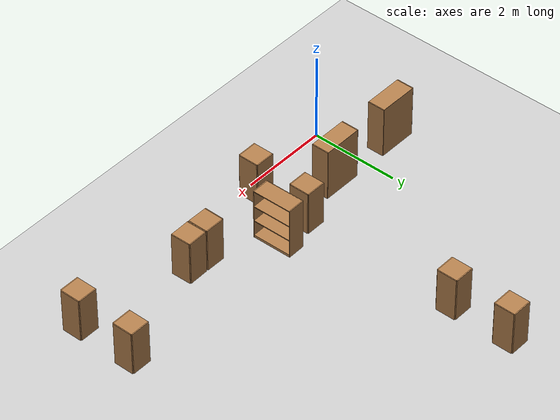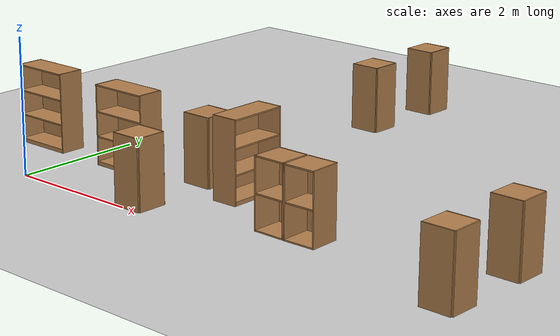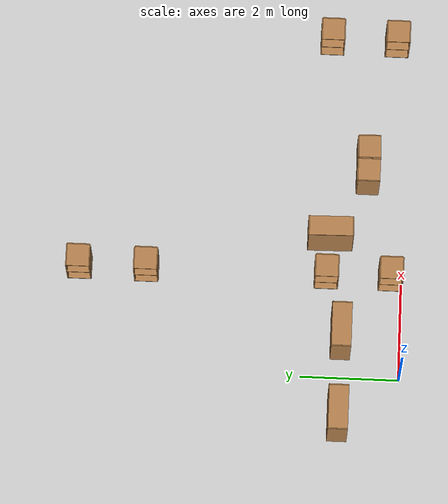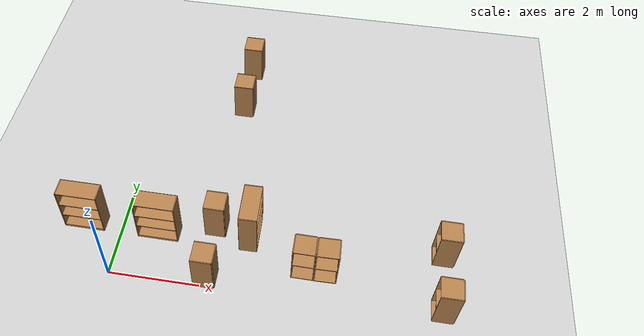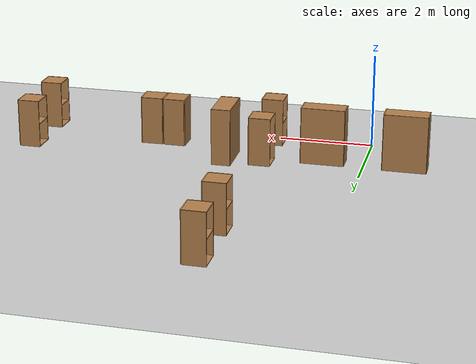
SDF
<sdf version="1.7">
 <world name="default">
  <model name="ground_plane">
   <static>1</static>
   <link name="link">
    <collision name="collision">
     <geometry><plane><normal>0 0 1</normal><size>100 100</size></plane></geometry>
     <surface><friction><ode><mu>100</mu><mu2>50</mu2></ode></friction></surface>
    </collision>
    <visual name="visual">
     <cast_shadows>0</cast_shadows>
     <geometry><plane><normal>0 0 1</normal><size>100 100</size></plane></geometry>
     <material>
      <script><uri>file://media/materials/scripts/gazebo.material</uri><name>Gazebo/Grey</name></script>
     </material>
    </visual>
   </link>
  </model>
  <model name="cabinet">
   <static>1</static>
   <link name="cabinet_bottom_plate">
    <inertial>
     <pose>0 0 -1 0 -0 0</pose>
     <inertia><ixx>2.05</ixx><ixy>0</ixy><ixz>0</ixz><iyy>2.05</iyy><iyz>0</iyz><izz>2.05</izz></inertia>
     <mass>25</mass>
    </inertial>
    <collision name="cabinet_bottom_plate_geom">
     <pose>0 0 0.01 0 -0 0</pose>
     <geometry><box><size>0.45 0.45 0.02</size></box></geometry>
    </collision>
    <visual name="cabinet_bottom_plate_geom_visual">
     <pose>0 0 0.01 0 -0 0</pose>
     <geometry><box><size>0.45 0.45 0.02</size></box></geometry>
     <material>
      <script><uri>file://media/materials/scripts/gazebo.material</uri><name>Gazebo/Wood</name></script>
     </material>
    </visual>
    <collision name="cabinet_bottom_plate_geom_cabinet_back_plate">
     <pose>0.235 0 0.51 0 -0 0</pose>
     <geometry><box><size>0.02 0.45 1.02</size></box></geometry>
    </collision>
    <visual name="cabinet_bottom_plate_geom_cabinet_back_plate_visual">
     <pose>0.235 0 0.51 0 -0 0</pose>
     <geometry><box><size>0.02 0.45 1.02</size></box></geometry>
     <material>
      <script><uri>file://media/materials/scripts/gazebo.material</uri><name>Gazebo/Wood</name></script>
     </material>
    </visual>
    <collision name="cabinet_bottom_plate_geom_cabinet_left_plate">
     <pose>0 0.235 0.51 0 -0 0</pose>
     <geometry><box><size>0.45 0.02 1.02</size></box></geometry>
    </collision>
    <visual name="cabinet_bottom_plate_geom_cabinet_left_plate_visual">
     <pose>0 0.235 0.51 0 -0 0</pose>
     <geometry><box><size>0.45 0.02 1.02</size></box></geometry>
     <material>
      <script><uri>file://media/materials/scripts/gazebo.material</uri><name>Gazebo/Wood</name></script>
     </material>
    </visual>
    <collision name="cabinet_bottom_plate_geom_cabinet_middle_plate">
     <pose>0 0 0.51 0 -0 0</pose>
     <geometry><box><size>0.45 0.45 0.02</size></box></geometry>
    </collision>
    <visual name="cabinet_bottom_plate_geom_cabinet_middle_plate_visual">
     <pose>0 0 0.51 0 -0 0</pose>
     <geometry><box><size>0.45 0.45 0.02</size></box></geometry>
     <material>
      <script><uri>file://media/materials/scripts/gazebo.material</uri><name>Gazebo/Wood</name></script>
     </material>
    </visual>
    <collision name="cabinet_bottom_plate_geom_cabinet_right_plate">
     <pose>0 -0.235 0.51 0 -0 0</pose>
     <geometry><box><size>0.45 0.02 1.02</size></box></geometry>
    </collision>
    <visual name="cabinet_bottom_plate_geom_cabinet_right_plate_visual">
     <pose>0 -0.235 0.51 0 -0 0</pose>
     <geometry><box><size>0.45 0.02 1.02</size></box></geometry>
     <material>
      <script><uri>file://media/materials/scripts/gazebo.material</uri><name>Gazebo/Wood</name></script>
     </material>
    </visual>
    <collision name="cabinet_bottom_plate_geom_cabinet_top_plate">
     <pose>0 0 1.01 0 -0 0</pose>
     <geometry><box><size>0.45 0.45 0.02</size></box></geometry>
    </collision>
    <visual name="cabinet_bottom_plate_geom_cabinet_top_plate_visual">
     <pose>0 0 1.01 0 -0 0</pose>
     <geometry><box><size>0.45 0.45 0.02</size></box></geometry>
     <material>
      <script><uri>file://media/materials/scripts/gazebo.material</uri><name>Gazebo/Wood</name></script>
     </material>
    </visual>
   </link>
   <pose>2.09193 0.230267 0 0 -0 0</pose>
  </model>
  <model name="cabinet_0">
   <static>1</static>
   <link name="cabinet_bottom_plate">
    <inertial>
     <pose>0 0 -1 0 -0 0</pose>
     <inertia><ixx>2.05</ixx><ixy>0</ixy><ixz>0</ixz><iyy>2.05</iyy><iyz>0</iyz><izz>2.05</izz></inertia>
     <mass>25</mass>
    </inertial>
    <collision name="cabinet_bottom_plate_geom">
     <pose>0 0 0.01 0 -0 0</pose>
     <geometry><box><size>0.45 0.45 0.02</size></box></geometry>
    </collision>
    <visual name="cabinet_bottom_plate_geom_visual">
     <pose>0 0 0.01 0 -0 0</pose>
     <geometry><box><size>0.45 0.45 0.02</size></box></geometry>
     <material>
      <script><uri>file://media/materials/scripts/gazebo.material</uri><name>Gazebo/Wood</name></script>
     </material>
    </visual>
    <collision name="cabinet_bottom_plate_geom_cabinet_back_plate">
     <pose>0.235 0 0.51 0 -0 0</pose>
     <geometry><box><size>0.02 0.45 1.02</size></box></geometry>
    </collision>
    <visual name="cabinet_bottom_plate_geom_cabinet_back_plate_visual">
     <pose>0.235 0 0.51 0 -0 0</pose>
     <geometry><box><size>0.02 0.45 1.02</size></box></geometry>
     <material>
      <script><uri>file://media/materials/scripts/gazebo.material</uri><name>Gazebo/Wood</name></script>
     </material>
    </visual>
    <collision name="cabinet_bottom_plate_geom_cabinet_left_plate">
     <pose>0 0.235 0.51 0 -0 0</pose>
     <geometry><box><size>0.45 0.02 1.02</size></box></geometry>
    </collision>
    <visual name="cabinet_bottom_plate_geom_cabinet_left_plate_visual">
     <pose>0 0.235 0.51 0 -0 0</pose>
     <geometry><box><size>0.45 0.02 1.02</size></box></geometry>
     <material>
      <script><uri>file://media/materials/scripts/gazebo.material</uri><name>Gazebo/Wood</name></script>
     </material>
    </visual>
    <collision name="cabinet_bottom_plate_geom_cabinet_middle_plate">
     <pose>0 0 0.51 0 -0 0</pose>
     <geometry><box><size>0.45 0.45 0.02</size></box></geometry>
    </collision>
    <visual name="cabinet_bottom_plate_geom_cabinet_middle_plate_visual">
     <pose>0 0 0.51 0 -0 0</pose>
     <geometry><box><size>0.45 0.45 0.02</size></box></geometry>
     <material>
      <script><uri>file://media/materials/scripts/gazebo.material</uri><name>Gazebo/Wood</name></script>
     </material>
    </visual>
    <collision name="cabinet_bottom_plate_geom_cabinet_right_plate">
     <pose>0 -0.235 0.51 0 -0 0</pose>
     <geometry><box><size>0.45 0.02 1.02</size></box></geometry>
    </collision>
    <visual name="cabinet_bottom_plate_geom_cabinet_right_plate_visual">
     <pose>0 -0.235 0.51 0 -0 0</pose>
     <geometry><box><size>0.45 0.02 1.02</size></box></geometry>
     <material>
      <script><uri>file://media/materials/scripts/gazebo.material</uri><name>Gazebo/Wood</name></script>
     </material>
    </visual>
    <collision name="cabinet_bottom_plate_geom_cabinet_top_plate">
     <pose>0 0 1.01 0 -0 0</pose>
     <geometry><box><size>0.45 0.45 0.02</size></box></geometry>
    </collision>
    <visual name="cabinet_bottom_plate_geom_cabinet_top_plate_visual">
     <pose>0 0 1.01 0 -0 0</pose>
     <geometry><box><size>0.45 0.45 0.02</size></box></geometry>
     <material>
      <script><uri>file://media/materials/scripts/gazebo.material</uri><name>Gazebo/Wood</name></script>
     </material>
    </visual>
   </link>
   <pose>2.08844 1.53729 0 0 -0 0</pose>
  </model>
  <model name="bookshelf">
   <static>1</static>
   <link name="link">
    <inertial><mass>1</mass></inertial>
    <collision name="back">
     <pose>0 0.005 0.6 0 -0 0</pose>
     <geometry><box><size>0.9 0.01 1.2</size></box></geometry>
    </collision>
    <visual name="visual1">
     <pose>0 0.005 0.6 0 -0 0</pose>
     <geometry><box><size>0.9 0.01 1.2</size></box></geometry>
     <material>
      <script><uri>file://media/materials/scripts/gazebo.material</uri><name>Gazebo/Wood</name></script>
     </material>
    </visual>
    <collision name="left_side">
     <pose>0.45 -0.195 0.6 0 -0 0</pose>
     <geometry><box><size>0.02 0.4 1.2</size></box></geometry>
    </collision>
    <visual name="visual2">
     <pose>0.45 -0.195 0.6 0 -0 0</pose>
     <geometry><box><size>0.02 0.4 1.2</size></box></geometry>
     <material>
      <script><uri>file://media/materials/scripts/gazebo.material</uri><name>Gazebo/Wood</name></script>
     </material>
    </visual>
    <collision name="right_side">
     <pose>-0.45 -0.195 0.6 0 -0 0</pose>
     <geometry><box><size>0.02 0.4 1.2</size></box></geometry>
    </collision>
    <visual name="visual3">
     <pose>-0.45 -0.195 0.6 0 -0 0</pose>
     <geometry><box><size>0.02 0.4 1.2</size></box></geometry>
     <material>
      <script><uri>file://media/materials/scripts/gazebo.material</uri><name>Gazebo/Wood</name></script>
     </material>
    </visual>
    <collision name="bottom">
     <pose>0 -0.195 0.03 0 -0 0</pose>
     <geometry><box><size>0.88 0.4 0.06</size></box></geometry>
    </collision>
    <visual name="visual4">
     <pose>0 -0.195 0.03 0 -0 0</pose>
     <geometry><box><size>0.88 0.4 0.06</size></box></geometry>
     <material>
      <script><uri>file://media/materials/scripts/gazebo.material</uri><name>Gazebo/Wood</name></script>
     </material>
    </visual>
    <collision name="top">
     <pose>0 -0.195 1.19 0 -0 0</pose>
     <geometry><box><size>0.88 0.4 0.02</size></box></geometry>
    </collision>
    <visual name="visual5">
     <pose>0 -0.195 1.19 0 -0 0</pose>
     <geometry><box><size>0.88 0.4 0.02</size></box></geometry>
     <material>
      <script><uri>file://media/materials/scripts/gazebo.material</uri><name>Gazebo/Wood</name></script>
     </material>
    </visual>
    <collision name="low_shelf">
     <pose>0 -0.195 0.43 0 -0 0</pose>
     <geometry><box><size>0.88 0.4 0.02</size></box></geometry>
    </collision>
    <visual name="visual6">
     <pose>0 -0.195 0.43 0 -0 0</pose>
     <geometry><box><size>0.88 0.4 0.02</size></box></geometry>
     <material>
      <script><uri>file://media/materials/scripts/gazebo.material</uri><name>Gazebo/Wood</name></script>
     </material>
    </visual>
    <collision name="high_shelf">
     <pose>0 -0.195 0.8 0 -0 0</pose>
     <geometry><box><size>0.88 0.4 0.02</size></box></geometry>
    </collision>
    <visual name="visual7">
     <pose>0 -0.195 0.8 0 -0 0</pose>
     <geometry><box><size>0.88 0.4 0.02</size></box></geometry>
     <material>
      <script><uri>file://media/materials/scripts/gazebo.material</uri><name>Gazebo/Wood</name></script>
     </material>
    </visual>
   </link>
   <pose>0.848772 1.39903 0 0 -0 0</pose>
  </model>
  <model name="bookshelf_0">
   <static>1</static>
   <link name="link">
    <inertial><mass>1</mass></inertial>
    <collision name="back">
     <pose>0 0.005 0.6 0 -0 0</pose>
     <geometry><box><size>0.9 0.01 1.2</size></box></geometry>
    </collision>
    <visual name="visual1">
     <pose>0 0.005 0.6 0 -0 0</pose>
     <geometry><box><size>0.9 0.01 1.2</size></box></geometry>
     <material>
      <script><uri>file://media/materials/scripts/gazebo.material</uri><name>Gazebo/Wood</name></script>
     </material>
    </visual>
    <collision name="left_side">
     <pose>0.45 -0.195 0.6 0 -0 0</pose>
     <geometry><box><size>0.02 0.4 1.2</size></box></geometry>
    </collision>
    <visual name="visual2">
     <pose>0.45 -0.195 0.6 0 -0 0</pose>
     <geometry><box><size>0.02 0.4 1.2</size></box></geometry>
     <material>
      <script><uri>file://media/materials/scripts/gazebo.material</uri><name>Gazebo/Wood</name></script>
     </material>
    </visual>
    <collision name="right_side">
     <pose>-0.45 -0.195 0.6 0 -0 0</pose>
     <geometry><box><size>0.02 0.4 1.2</size></box></geometry>
    </collision>
    <visual name="visual3">
     <pose>-0.45 -0.195 0.6 0 -0 0</pose>
     <geometry><box><size>0.02 0.4 1.2</size></box></geometry>
     <material>
      <script><uri>file://media/materials/scripts/gazebo.material</uri><name>Gazebo/Wood</name></script>
     </material>
    </visual>
    <collision name="bottom">
     <pose>0 -0.195 0.03 0 -0 0</pose>
     <geometry><box><size>0.88 0.4 0.06</size></box></geometry>
    </collision>
    <visual name="visual4">
     <pose>0 -0.195 0.03 0 -0 0</pose>
     <geometry><box><size>0.88 0.4 0.06</size></box></geometry>
     <material>
      <script><uri>file://media/materials/scripts/gazebo.material</uri><name>Gazebo/Wood</name></script>
     </material>
    </visual>
    <collision name="top">
     <pose>0 -0.195 1.19 0 -0 0</pose>
     <geometry><box><size>0.88 0.4 0.02</size></box></geometry>
    </collision>
    <visual name="visual5">
     <pose>0 -0.195 1.19 0 -0 0</pose>
     <geometry><box><size>0.88 0.4 0.02</size></box></geometry>
     <material>
      <script><uri>file://media/materials/scripts/gazebo.material</uri><name>Gazebo/Wood</name></script>
     </material>
    </visual>
    <collision name="low_shelf">
     <pose>0 -0.195 0.43 0 -0 0</pose>
     <geometry><box><size>0.88 0.4 0.02</size></box></geometry>
    </collision>
    <visual name="visual6">
     <pose>0 -0.195 0.43 0 -0 0</pose>
     <geometry><box><size>0.88 0.4 0.02</size></box></geometry>
     <material>
      <script><uri>file://media/materials/scripts/gazebo.material</uri><name>Gazebo/Wood</name></script>
     </material>
    </visual>
    <collision name="high_shelf">
     <pose>0 -0.195 0.8 0 -0 0</pose>
     <geometry><box><size>0.88 0.4 0.02</size></box></geometry>
    </collision>
    <visual name="visual7">
     <pose>0 -0.195 0.8 0 -0 0</pose>
     <geometry><box><size>0.88 0.4 0.02</size></box></geometry>
     <material>
      <script><uri>file://media/materials/scripts/gazebo.material</uri><name>Gazebo/Wood</name></script>
     </material>
    </visual>
   </link>
   <pose>-0.849551 1.4123 0 0 -0 0</pose>
  </model>
  <model name="cabinet_4">
   <static>1</static>
   <link name="cabinet_bottom_plate">
    <inertial>
     <pose>0 0 -1 0 -0 0</pose>
     <inertia><ixx>2.05</ixx><ixy>0</ixy><ixz>0</ixz><iyy>2.05</iyy><iyz>0</iyz><izz>2.05</izz></inertia>
     <mass>25</mass>
    </inertial>
    <collision name="cabinet_bottom_plate_geom">
     <pose>0 0 0.01 0 -0 0</pose>
     <geometry><box><size>0.45 0.45 0.02</size></box></geometry>
    </collision>
    <visual name="cabinet_bottom_plate_geom_visual">
     <pose>0 0 0.01 0 -0 0</pose>
     <geometry><box><size>0.45 0.45 0.02</size></box></geometry>
     <material>
      <script><uri>file://media/materials/scripts/gazebo.material</uri><name>Gazebo/Wood</name></script>
     </material>
    </visual>
    <collision name="cabinet_bottom_plate_geom_cabinet_back_plate">
     <pose>0.235 0 0.51 0 -0 0</pose>
     <geometry><box><size>0.02 0.45 1.02</size></box></geometry>
    </collision>
    <visual name="cabinet_bottom_plate_geom_cabinet_back_plate_visual">
     <pose>0.235 0 0.51 0 -0 0</pose>
     <geometry><box><size>0.02 0.45 1.02</size></box></geometry>
     <material>
      <script><uri>file://media/materials/scripts/gazebo.material</uri><name>Gazebo/Wood</name></script>
     </material>
    </visual>
    <collision name="cabinet_bottom_plate_geom_cabinet_left_plate">
     <pose>0 0.235 0.51 0 -0 0</pose>
     <geometry><box><size>0.45 0.02 1.02</size></box></geometry>
    </collision>
    <visual name="cabinet_bottom_plate_geom_cabinet_left_plate_visual">
     <pose>0 0.235 0.51 0 -0 0</pose>
     <geometry><box><size>0.45 0.02 1.02</size></box></geometry>
     <material>
      <script><uri>file://media/materials/scripts/gazebo.material</uri><name>Gazebo/Wood</name></script>
     </material>
    </visual>
    <collision name="cabinet_bottom_plate_geom_cabinet_middle_plate">
     <pose>0 0 0.51 0 -0 0</pose>
     <geometry><box><size>0.45 0.45 0.02</size></box></geometry>
    </collision>
    <visual name="cabinet_bottom_plate_geom_cabinet_middle_plate_visual">
     <pose>0 0 0.51 0 -0 0</pose>
     <geometry><box><size>0.45 0.45 0.02</size></box></geometry>
     <material>
      <script><uri>file://media/materials/scripts/gazebo.material</uri><name>Gazebo/Wood</name></script>
     </material>
    </visual>
    <collision name="cabinet_bottom_plate_geom_cabinet_right_plate">
     <pose>0 -0.235 0.51 0 -0 0</pose>
     <geometry><box><size>0.45 0.02 1.02</size></box></geometry>
    </collision>
    <visual name="cabinet_bottom_plate_geom_cabinet_right_plate_visual">
     <pose>0 -0.235 0.51 0 -0 0</pose>
     <geometry><box><size>0.45 0.02 1.02</size></box></geometry>
     <material>
      <script><uri>file://media/materials/scripts/gazebo.material</uri><name>Gazebo/Wood</name></script>
     </material>
    </visual>
    <collision name="cabinet_bottom_plate_geom_cabinet_top_plate">
     <pose>0 0 1.01 0 -0 0</pose>
     <geometry><box><size>0.45 0.45 0.02</size></box></geometry>
    </collision>
    <visual name="cabinet_bottom_plate_geom_cabinet_top_plate_visual">
     <pose>0 0 1.01 0 -0 0</pose>
     <geometry><box><size>0.45 0.45 0.02</size></box></geometry>
     <material>
      <script><uri>file://media/materials/scripts/gazebo.material</uri><name>Gazebo/Wood</name></script>
     </material>
    </visual>
   </link>
   <pose>2.10369 6.57114 0 0 -0 0</pose>
  </model>
  <model name="cabinet_5">
   <static>1</static>
   <link name="cabinet_bottom_plate">
    <inertial>
     <pose>0 0 -1 0 -0 0</pose>
     <inertia><ixx>2.05</ixx><ixy>0</ixy><ixz>0</ixz><iyy>2.05</iyy><iyz>0</iyz><izz>2.05</izz></inertia>
     <mass>25</mass>
    </inertial>
    <collision name="cabinet_bottom_plate_geom">
     <pose>0 0 0.01 0 -0 0</pose>
     <geometry><box><size>0.45 0.45 0.02</size></box></geometry>
    </collision>
    <visual name="cabinet_bottom_plate_geom_visual">
     <pose>0 0 0.01 0 -0 0</pose>
     <geometry><box><size>0.45 0.45 0.02</size></box></geometry>
     <material>
      <script><uri>file://media/materials/scripts/gazebo.material</uri><name>Gazebo/Wood</name></script>
     </material>
    </visual>
    <collision name="cabinet_bottom_plate_geom_cabinet_back_plate">
     <pose>0.235 0 0.51 0 -0 0</pose>
     <geometry><box><size>0.02 0.45 1.02</size></box></geometry>
    </collision>
    <visual name="cabinet_bottom_plate_geom_cabinet_back_plate_visual">
     <pose>0.235 0 0.51 0 -0 0</pose>
     <geometry><box><size>0.02 0.45 1.02</size></box></geometry>
     <material>
      <script><uri>file://media/materials/scripts/gazebo.material</uri><name>Gazebo/Wood</name></script>
     </material>
    </visual>
    <collision name="cabinet_bottom_plate_geom_cabinet_left_plate">
     <pose>0 0.235 0.51 0 -0 0</pose>
     <geometry><box><size>0.45 0.02 1.02</size></box></geometry>
    </collision>
    <visual name="cabinet_bottom_plate_geom_cabinet_left_plate_visual">
     <pose>0 0.235 0.51 0 -0 0</pose>
     <geometry><box><size>0.45 0.02 1.02</size></box></geometry>
     <material>
      <script><uri>file://media/materials/scripts/gazebo.material</uri><name>Gazebo/Wood</name></script>
     </material>
    </visual>
    <collision name="cabinet_bottom_plate_geom_cabinet_middle_plate">
     <pose>0 0 0.51 0 -0 0</pose>
     <geometry><box><size>0.45 0.45 0.02</size></box></geometry>
    </collision>
    <visual name="cabinet_bottom_plate_geom_cabinet_middle_plate_visual">
     <pose>0 0 0.51 0 -0 0</pose>
     <geometry><box><size>0.45 0.45 0.02</size></box></geometry>
     <material>
      <script><uri>file://media/materials/scripts/gazebo.material</uri><name>Gazebo/Wood</name></script>
     </material>
    </visual>
    <collision name="cabinet_bottom_plate_geom_cabinet_right_plate">
     <pose>0 -0.235 0.51 0 -0 0</pose>
     <geometry><box><size>0.45 0.02 1.02</size></box></geometry>
    </collision>
    <visual name="cabinet_bottom_plate_geom_cabinet_right_plate_visual">
     <pose>0 -0.235 0.51 0 -0 0</pose>
     <geometry><box><size>0.45 0.02 1.02</size></box></geometry>
     <material>
      <script><uri>file://media/materials/scripts/gazebo.material</uri><name>Gazebo/Wood</name></script>
     </material>
    </visual>
    <collision name="cabinet_bottom_plate_geom_cabinet_top_plate">
     <pose>0 0 1.01 0 -0 0</pose>
     <geometry><box><size>0.45 0.45 0.02</size></box></geometry>
    </collision>
    <visual name="cabinet_bottom_plate_geom_cabinet_top_plate_visual">
     <pose>0 0 1.01 0 -0 0</pose>
     <geometry><box><size>0.45 0.45 0.02</size></box></geometry>
     <material>
      <script><uri>file://media/materials/scripts/gazebo.material</uri><name>Gazebo/Wood</name></script>
     </material>
    </visual>
   </link>
   <pose>2.09564 5.20287 0 0 -0 0</pose>
  </model>
  <model name="cabinet_6">
   <static>1</static>
   <link name="cabinet_bottom_plate">
    <inertial>
     <pose>0 0 -1 0 -0 0</pose>
     <inertia><ixx>2.05</ixx><ixy>0</ixy><ixz>0</ixz><iyy>2.05</iyy><iyz>0</iyz><izz>2.05</izz></inertia>
     <mass>25</mass>
    </inertial>
    <collision name="cabinet_bottom_plate_geom">
     <pose>0 0 0.01 0 -0 0</pose>
     <geometry><box><size>0.45 0.45 0.02</size></box></geometry>
    </collision>
    <visual name="cabinet_bottom_plate_geom_visual">
     <pose>0 0 0.01 0 -0 0</pose>
     <geometry><box><size>0.45 0.45 0.02</size></box></geometry>
     <material>
      <script><uri>file://media/materials/scripts/gazebo.material</uri><name>Gazebo/Wood</name></script>
     </material>
    </visual>
    <collision name="cabinet_bottom_plate_geom_cabinet_back_plate">
     <pose>0.235 0 0.51 0 -0 0</pose>
     <geometry><box><size>0.02 0.45 1.02</size></box></geometry>
    </collision>
    <visual name="cabinet_bottom_plate_geom_cabinet_back_plate_visual">
     <pose>0.235 0 0.51 0 -0 0</pose>
     <geometry><box><size>0.02 0.45 1.02</size></box></geometry>
     <material>
      <script><uri>file://media/materials/scripts/gazebo.material</uri><name>Gazebo/Wood</name></script>
     </material>
    </visual>
    <collision name="cabinet_bottom_plate_geom_cabinet_left_plate">
     <pose>0 0.235 0.51 0 -0 0</pose>
     <geometry><box><size>0.45 0.02 1.02</size></box></geometry>
    </collision>
    <visual name="cabinet_bottom_plate_geom_cabinet_left_plate_visual">
     <pose>0 0.235 0.51 0 -0 0</pose>
     <geometry><box><size>0.45 0.02 1.02</size></box></geometry>
     <material>
      <script><uri>file://media/materials/scripts/gazebo.material</uri><name>Gazebo/Wood</name></script>
     </material>
    </visual>
    <collision name="cabinet_bottom_plate_geom_cabinet_middle_plate">
     <pose>0 0 0.51 0 -0 0</pose>
     <geometry><box><size>0.45 0.45 0.02</size></box></geometry>
    </collision>
    <visual name="cabinet_bottom_plate_geom_cabinet_middle_plate_visual">
     <pose>0 0 0.51 0 -0 0</pose>
     <geometry><box><size>0.45 0.45 0.02</size></box></geometry>
     <material>
      <script><uri>file://media/materials/scripts/gazebo.material</uri><name>Gazebo/Wood</name></script>
     </material>
    </visual>
    <collision name="cabinet_bottom_plate_geom_cabinet_right_plate">
     <pose>0 -0.235 0.51 0 -0 0</pose>
     <geometry><box><size>0.45 0.02 1.02</size></box></geometry>
    </collision>
    <visual name="cabinet_bottom_plate_geom_cabinet_right_plate_visual">
     <pose>0 -0.235 0.51 0 -0 0</pose>
     <geometry><box><size>0.45 0.02 1.02</size></box></geometry>
     <material>
      <script><uri>file://media/materials/scripts/gazebo.material</uri><name>Gazebo/Wood</name></script>
     </material>
    </visual>
    <collision name="cabinet_bottom_plate_geom_cabinet_top_plate">
     <pose>0 0 1.01 0 -0 0</pose>
     <geometry><box><size>0.45 0.45 0.02</size></box></geometry>
    </collision>
    <visual name="cabinet_bottom_plate_geom_cabinet_top_plate_visual">
     <pose>0 0 1.01 0 -0 0</pose>
     <geometry><box><size>0.45 0.45 0.02</size></box></geometry>
     <material>
      <script><uri>file://media/materials/scripts/gazebo.material</uri><name>Gazebo/Wood</name></script>
     </material>
    </visual>
   </link>
   <pose>7.11403 1.57196 0 0 -0 0</pose>
  </model>
  <model name="cabinet_7">
   <static>1</static>
   <link name="cabinet_bottom_plate">
    <inertial>
     <pose>0 0 -1 0 -0 0</pose>
     <inertia><ixx>2.05</ixx><ixy>0</ixy><ixz>0</ixz><iyy>2.05</iyy><iyz>0</iyz><izz>2.05</izz></inertia>
     <mass>25</mass>
    </inertial>
    <collision name="cabinet_bottom_plate_geom">
     <pose>0 0 0.01 0 -0 0</pose>
     <geometry><box><size>0.45 0.45 0.02</size></box></geometry>
    </collision>
    <visual name="cabinet_bottom_plate_geom_visual">
     <pose>0 0 0.01 0 -0 0</pose>
     <geometry><box><size>0.45 0.45 0.02</size></box></geometry>
     <material>
      <script><uri>file://media/materials/scripts/gazebo.material</uri><name>Gazebo/Wood</name></script>
     </material>
    </visual>
    <collision name="cabinet_bottom_plate_geom_cabinet_back_plate">
     <pose>0.235 0 0.51 0 -0 0</pose>
     <geometry><box><size>0.02 0.45 1.02</size></box></geometry>
    </collision>
    <visual name="cabinet_bottom_plate_geom_cabinet_back_plate_visual">
     <pose>0.235 0 0.51 0 -0 0</pose>
     <geometry><box><size>0.02 0.45 1.02</size></box></geometry>
     <material>
      <script><uri>file://media/materials/scripts/gazebo.material</uri><name>Gazebo/Wood</name></script>
     </material>
    </visual>
    <collision name="cabinet_bottom_plate_geom_cabinet_left_plate">
     <pose>0 0.235 0.51 0 -0 0</pose>
     <geometry><box><size>0.45 0.02 1.02</size></box></geometry>
    </collision>
    <visual name="cabinet_bottom_plate_geom_cabinet_left_plate_visual">
     <pose>0 0.235 0.51 0 -0 0</pose>
     <geometry><box><size>0.45 0.02 1.02</size></box></geometry>
     <material>
      <script><uri>file://media/materials/scripts/gazebo.material</uri><name>Gazebo/Wood</name></script>
     </material>
    </visual>
    <collision name="cabinet_bottom_plate_geom_cabinet_middle_plate">
     <pose>0 0 0.51 0 -0 0</pose>
     <geometry><box><size>0.45 0.45 0.02</size></box></geometry>
    </collision>
    <visual name="cabinet_bottom_plate_geom_cabinet_middle_plate_visual">
     <pose>0 0 0.51 0 -0 0</pose>
     <geometry><box><size>0.45 0.45 0.02</size></box></geometry>
     <material>
      <script><uri>file://media/materials/scripts/gazebo.material</uri><name>Gazebo/Wood</name></script>
     </material>
    </visual>
    <collision name="cabinet_bottom_plate_geom_cabinet_right_plate">
     <pose>0 -0.235 0.51 0 -0 0</pose>
     <geometry><box><size>0.45 0.02 1.02</size></box></geometry>
    </collision>
    <visual name="cabinet_bottom_plate_geom_cabinet_right_plate_visual">
     <pose>0 -0.235 0.51 0 -0 0</pose>
     <geometry><box><size>0.45 0.02 1.02</size></box></geometry>
     <material>
      <script><uri>file://media/materials/scripts/gazebo.material</uri><name>Gazebo/Wood</name></script>
     </material>
    </visual>
    <collision name="cabinet_bottom_plate_geom_cabinet_top_plate">
     <pose>0 0 1.01 0 -0 0</pose>
     <geometry><box><size>0.45 0.45 0.02</size></box></geometry>
    </collision>
    <visual name="cabinet_bottom_plate_geom_cabinet_top_plate_visual">
     <pose>0 0 1.01 0 -0 0</pose>
     <geometry><box><size>0.45 0.45 0.02</size></box></geometry>
     <material>
      <script><uri>file://media/materials/scripts/gazebo.material</uri><name>Gazebo/Wood</name></script>
     </material>
    </visual>
   </link>
   <pose>7.11236 0.234026 0 0 -0 0</pose>
  </model>
  <model name="bookshelf_3">
   <static>1</static>
   <link name="link">
    <inertial><mass>1</mass></inertial>
    <collision name="back">
     <pose>0 0.005 0.6 0 -0 0</pose>
     <geometry><box><size>0.9 0.01 1.2</size></box></geometry>
    </collision>
    <visual name="visual1">
     <pose>0 0.005 0.6 0 -0 0</pose>
     <geometry><box><size>0.9 0.01 1.2</size></box></geometry>
     <material>
      <script><uri>file://media/materials/scripts/gazebo.material</uri><name>Gazebo/Wood</name></script>
     </material>
    </visual>
    <collision name="left_side">
     <pose>0.45 -0.195 0.6 0 -0 0</pose>
     <geometry><box><size>0.02 0.4 1.2</size></box></geometry>
    </collision>
    <visual name="visual2">
     <pose>0.45 -0.195 0.6 0 -0 0</pose>
     <geometry><box><size>0.02 0.4 1.2</size></box></geometry>
     <material>
      <script><uri>file://media/materials/scripts/gazebo.material</uri><name>Gazebo/Wood</name></script>
     </material>
    </visual>
    <collision name="right_side">
     <pose>-0.45 -0.195 0.6 0 -0 0</pose>
     <geometry><box><size>0.02 0.4 1.2</size></box></geometry>
    </collision>
    <visual name="visual3">
     <pose>-0.45 -0.195 0.6 0 -0 0</pose>
     <geometry><box><size>0.02 0.4 1.2</size></box></geometry>
     <material>
      <script><uri>file://media/materials/scripts/gazebo.material</uri><name>Gazebo/Wood</name></script>
     </material>
    </visual>
    <collision name="bottom">
     <pose>0 -0.195 0.03 0 -0 0</pose>
     <geometry><box><size>0.88 0.4 0.06</size></box></geometry>
    </collision>
    <visual name="visual4">
     <pose>0 -0.195 0.03 0 -0 0</pose>
     <geometry><box><size>0.88 0.4 0.06</size></box></geometry>
     <material>
      <script><uri>file://media/materials/scripts/gazebo.material</uri><name>Gazebo/Wood</name></script>
     </material>
    </visual>
    <collision name="top">
     <pose>0 -0.195 1.19 0 -0 0</pose>
     <geometry><box><size>0.88 0.4 0.02</size></box></geometry>
    </collision>
    <visual name="visual5">
     <pose>0 -0.195 1.19 0 -0 0</pose>
     <geometry><box><size>0.88 0.4 0.02</size></box></geometry>
     <material>
      <script><uri>file://media/materials/scripts/gazebo.material</uri><name>Gazebo/Wood</name></script>
     </material>
    </visual>
    <collision name="low_shelf">
     <pose>0 -0.195 0.43 0 -0 0</pose>
     <geometry><box><size>0.88 0.4 0.02</size></box></geometry>
    </collision>
    <visual name="visual6">
     <pose>0 -0.195 0.43 0 -0 0</pose>
     <geometry><box><size>0.88 0.4 0.02</size></box></geometry>
     <material>
      <script><uri>file://media/materials/scripts/gazebo.material</uri><name>Gazebo/Wood</name></script>
     </material>
    </visual>
    <collision name="high_shelf">
     <pose>0 -0.195 0.8 0 -0 0</pose>
     <geometry><box><size>0.88 0.4 0.02</size></box></geometry>
    </collision>
    <visual name="visual7">
     <pose>0 -0.195 0.8 0 -0 0</pose>
     <geometry><box><size>0.88 0.4 0.02</size></box></geometry>
     <material>
      <script><uri>file://media/materials/scripts/gazebo.material</uri><name>Gazebo/Wood</name></script>
     </material>
    </visual>
   </link>
   <pose>2.68073 1.4822 0 0 -0 1.58519</pose>
  </model>
  <model name="cabinet_9">
   <static>1</static>
   <link name="cabinet_bottom_plate">
    <inertial>
     <pose>0 0 -1 0 -0 0</pose>
     <inertia><ixx>2.05</ixx><ixy>0</ixy><ixz>0</ixz><iyy>2.05</iyy><iyz>0</iyz><izz>2.05</izz></inertia>
     <mass>25</mass>
    </inertial>
    <collision name="cabinet_bottom_plate_geom">
     <pose>0 0 0.01 0 -0 0</pose>
     <geometry><box><size>0.45 0.45 0.02</size></box></geometry>
    </collision>
    <visual name="cabinet_bottom_plate_geom_visual">
     <pose>0 0 0.01 0 -0 0</pose>
     <geometry><box><size>0.45 0.45 0.02</size></box></geometry>
     <material>
      <script><uri>file://media/materials/scripts/gazebo.material</uri><name>Gazebo/Wood</name></script>
     </material>
    </visual>
    <collision name="cabinet_bottom_plate_geom_cabinet_back_plate">
     <pose>0.235 0 0.51 0 -0 0</pose>
     <geometry><box><size>0.02 0.45 1.02</size></box></geometry>
    </collision>
    <visual name="cabinet_bottom_plate_geom_cabinet_back_plate_visual">
     <pose>0.235 0 0.51 0 -0 0</pose>
     <geometry><box><size>0.02 0.45 1.02</size></box></geometry>
     <material>
      <script><uri>file://media/materials/scripts/gazebo.material</uri><name>Gazebo/Wood</name></script>
     </material>
    </visual>
    <collision name="cabinet_bottom_plate_geom_cabinet_left_plate">
     <pose>0 0.235 0.51 0 -0 0</pose>
     <geometry><box><size>0.45 0.02 1.02</size></box></geometry>
    </collision>
    <visual name="cabinet_bottom_plate_geom_cabinet_left_plate_visual">
     <pose>0 0.235 0.51 0 -0 0</pose>
     <geometry><box><size>0.45 0.02 1.02</size></box></geometry>
     <material>
      <script><uri>file://media/materials/scripts/gazebo.material</uri><name>Gazebo/Wood</name></script>
     </material>
    </visual>
    <collision name="cabinet_bottom_plate_geom_cabinet_middle_plate">
     <pose>0 0 0.51 0 -0 0</pose>
     <geometry><box><size>0.45 0.45 0.02</size></box></geometry>
    </collision>
    <visual name="cabinet_bottom_plate_geom_cabinet_middle_plate_visual">
     <pose>0 0 0.51 0 -0 0</pose>
     <geometry><box><size>0.45 0.45 0.02</size></box></geometry>
     <material>
      <script><uri>file://media/materials/scripts/gazebo.material</uri><name>Gazebo/Wood</name></script>
     </material>
    </visual>
    <collision name="cabinet_bottom_plate_geom_cabinet_right_plate">
     <pose>0 -0.235 0.51 0 -0 0</pose>
     <geometry><box><size>0.45 0.02 1.02</size></box></geometry>
    </collision>
    <visual name="cabinet_bottom_plate_geom_cabinet_right_plate_visual">
     <pose>0 -0.235 0.51 0 -0 0</pose>
     <geometry><box><size>0.45 0.02 1.02</size></box></geometry>
     <material>
      <script><uri>file://media/materials/scripts/gazebo.material</uri><name>Gazebo/Wood</name></script>
     </material>
    </visual>
    <collision name="cabinet_bottom_plate_geom_cabinet_top_plate">
     <pose>0 0 1.01 0 -0 0</pose>
     <geometry><box><size>0.45 0.45 0.02</size></box></geometry>
    </collision>
    <visual name="cabinet_bottom_plate_geom_cabinet_top_plate_visual">
     <pose>0 0 1.01 0 -0 0</pose>
     <geometry><box><size>0.45 0.45 0.02</size></box></geometry>
     <material>
      <script><uri>file://media/materials/scripts/gazebo.material</uri><name>Gazebo/Wood</name></script>
     </material>
    </visual>
   </link>
   <pose>4.62899 0.747737 0 0 -0 1.59252</pose>
  </model>
  <model name="cabinet_10">
   <static>1</static>
   <link name="cabinet_bottom_plate">
    <inertial>
     <pose>0 0 -1 0 -0 0</pose>
     <inertia><ixx>2.05</ixx><ixy>0</ixy><ixz>0</ixz><iyy>2.05</iyy><iyz>0</iyz><izz>2.05</izz></inertia>
     <mass>25</mass>
    </inertial>
    <collision name="cabinet_bottom_plate_geom">
     <pose>0 0 0.01 0 -0 0</pose>
     <geometry><box><size>0.45 0.45 0.02</size></box></geometry>
    </collision>
    <visual name="cabinet_bottom_plate_geom_visual">
     <pose>0 0 0.01 0 -0 0</pose>
     <geometry><box><size>0.45 0.45 0.02</size></box></geometry>
     <material>
      <script><uri>file://media/materials/scripts/gazebo.material</uri><name>Gazebo/Wood</name></script>
     </material>
    </visual>
    <collision name="cabinet_bottom_plate_geom_cabinet_back_plate">
     <pose>0.235 0 0.51 0 -0 0</pose>
     <geometry><box><size>0.02 0.45 1.02</size></box></geometry>
    </collision>
    <visual name="cabinet_bottom_plate_geom_cabinet_back_plate_visual">
     <pose>0.235 0 0.51 0 -0 0</pose>
     <geometry><box><size>0.02 0.45 1.02</size></box></geometry>
     <material>
      <script><uri>file://media/materials/scripts/gazebo.material</uri><name>Gazebo/Wood</name></script>
     </material>
    </visual>
    <collision name="cabinet_bottom_plate_geom_cabinet_left_plate">
     <pose>0 0.235 0.51 0 -0 0</pose>
     <geometry><box><size>0.45 0.02 1.02</size></box></geometry>
    </collision>
    <visual name="cabinet_bottom_plate_geom_cabinet_left_plate_visual">
     <pose>0 0.235 0.51 0 -0 0</pose>
     <geometry><box><size>0.45 0.02 1.02</size></box></geometry>
     <material>
      <script><uri>file://media/materials/scripts/gazebo.material</uri><name>Gazebo/Wood</name></script>
     </material>
    </visual>
    <collision name="cabinet_bottom_plate_geom_cabinet_middle_plate">
     <pose>0 0 0.51 0 -0 0</pose>
     <geometry><box><size>0.45 0.45 0.02</size></box></geometry>
    </collision>
    <visual name="cabinet_bottom_plate_geom_cabinet_middle_plate_visual">
     <pose>0 0 0.51 0 -0 0</pose>
     <geometry><box><size>0.45 0.45 0.02</size></box></geometry>
     <material>
      <script><uri>file://media/materials/scripts/gazebo.material</uri><name>Gazebo/Wood</name></script>
     </material>
    </visual>
    <collision name="cabinet_bottom_plate_geom_cabinet_right_plate">
     <pose>0 -0.235 0.51 0 -0 0</pose>
     <geometry><box><size>0.45 0.02 1.02</size></box></geometry>
    </collision>
    <visual name="cabinet_bottom_plate_geom_cabinet_right_plate_visual">
     <pose>0 -0.235 0.51 0 -0 0</pose>
     <geometry><box><size>0.45 0.02 1.02</size></box></geometry>
     <material>
      <script><uri>file://media/materials/scripts/gazebo.material</uri><name>Gazebo/Wood</name></script>
     </material>
    </visual>
    <collision name="cabinet_bottom_plate_geom_cabinet_top_plate">
     <pose>0 0 1.01 0 -0 0</pose>
     <geometry><box><size>0.45 0.45 0.02</size></box></geometry>
    </collision>
    <visual name="cabinet_bottom_plate_geom_cabinet_top_plate_visual">
     <pose>0 0 1.01 0 -0 0</pose>
     <geometry><box><size>0.45 0.45 0.02</size></box></geometry>
     <material>
      <script><uri>file://media/materials/scripts/gazebo.material</uri><name>Gazebo/Wood</name></script>
     </material>
    </visual>
   </link>
   <pose>4.13942 0.748264 0 0 -0 1.56555</pose>
  </model>
 </world>
</sdf>
